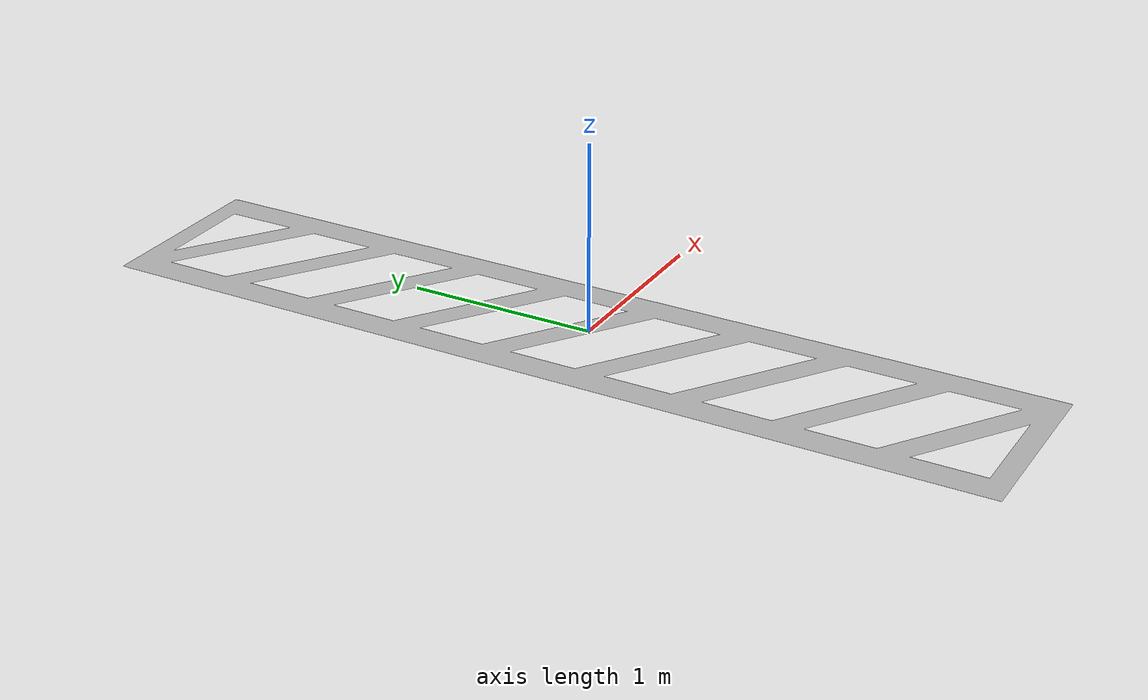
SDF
<sdf version="1.7">
  <model name="hazard_lines_striped_scaled" canonical_link="node0_link">
    <link name="node0_link">
      <visual name="node0">
        <pose>0 0 0 1.5708 0 0</pose>
        <geometry>
          <mesh>
            <uri>model://hazard_lines_striped_scaled/meshes/hazard_lines_striped_scaled.obj</uri>
            <scale>1 1 0.69 </scale>
          </mesh>
        </geometry>
      </visual>
    </link>
  </model>
</sdf>
